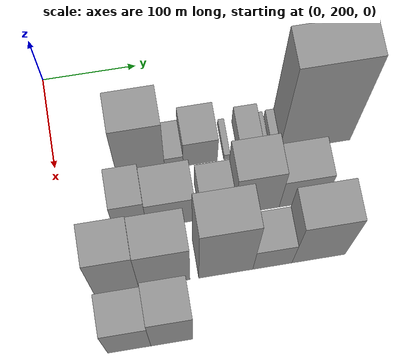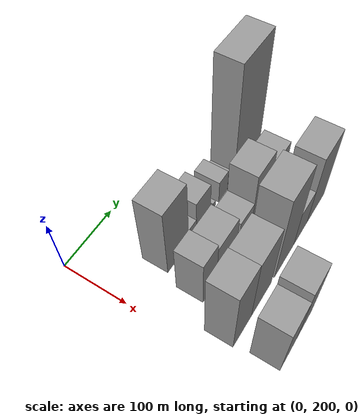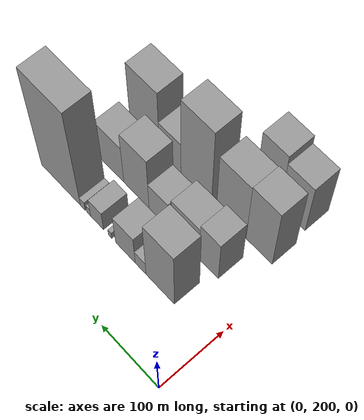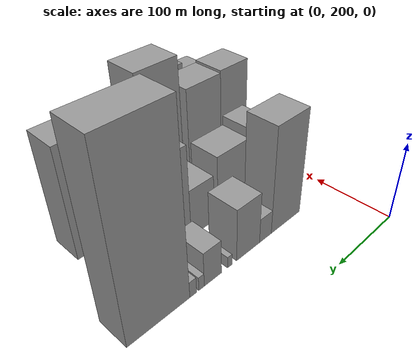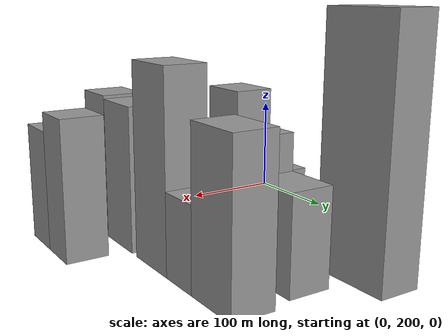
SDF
<sdf version="1.6">
 <world name="default">
  <model name="building_34">
   <static>1</static>
   <pose>100.0000 288.0815 0 0.000000 0.000000 0.000000</pose>
   <link name="link">
    <pose>0 0 69.00 0 0 0</pose>
    <collision name="collision"><geometry><box><size>40.0000 50.3052 138.0000</size></box></geometry></collision>
    <visual name="visual">
     <cast_shadows>0</cast_shadows>
     <geometry><box><size>40.0000 50.3052 138.0000</size></box></geometry>
     <material>
      <script>
       <uri>model://grey_wall/materials/scripts</uri>
       <uri>model://grey_wall/materials/textures</uri>
       <name>vrc/grey_wall</name>
      </script>
     </material>
    </visual>
   </link>
  </model>
  <model name="building_35">
   <static>1</static>
   <pose>100.0000 323.0292 0 0.000000 0.000000 0.000000</pose>
   <link name="link">
    <pose>0 0 16.50 0 0 0</pose>
    <collision name="collision"><geometry><box><size>40.0000 19.5901 33.0000</size></box></geometry></collision>
    <visual name="visual">
     <cast_shadows>0</cast_shadows>
     <geometry><box><size>40.0000 19.5901 33.0000</size></box></geometry>
     <material>
      <script>
       <uri>model://grey_wall/materials/scripts</uri>
       <uri>model://grey_wall/materials/textures</uri>
       <name>vrc/grey_wall</name>
      </script>
     </material>
    </visual>
   </link>
  </model>
  <model name="building_36">
   <static>1</static>
   <pose>100.0000 350.8618 0 0.000000 0.000000 0.000000</pose>
   <link name="link">
    <pose>0 0 34.50 0 0 0</pose>
    <collision name="collision"><geometry><box><size>40.0000 36.0752 69.0000</size></box></geometry></collision>
    <visual name="visual">
     <cast_shadows>0</cast_shadows>
     <geometry><box><size>40.0000 36.0752 69.0000</size></box></geometry>
     <material>
      <script>
       <uri>model://grey_wall/materials/scripts</uri>
       <uri>model://grey_wall/materials/textures</uri>
       <name>vrc/grey_wall</name>
      </script>
     </material>
    </visual>
   </link>
  </model>
  <model name="building_37">
   <static>1</static>
   <pose>100.0000 379.1354 0 0.000000 0.000000 0.000000</pose>
   <link name="link">
    <pose>0 0 7.50 0 0 0</pose>
    <collision name="collision"><geometry><box><size>40.0000 6.4720 15.0000</size></box></geometry></collision>
    <visual name="visual">
     <cast_shadows>0</cast_shadows>
     <geometry><box><size>40.0000 6.4720 15.0000</size></box></geometry>
     <material>
      <script>
       <uri>model://grey_wall/materials/scripts</uri>
       <uri>model://grey_wall/materials/textures</uri>
       <name>vrc/grey_wall</name>
      </script>
     </material>
    </visual>
   </link>
  </model>
  <model name="building_38">
   <static>1</static>
   <pose>100.0000 403.4569 0 0.000000 0.000000 0.000000</pose>
   <link name="link">
    <pose>0 0 22.50 0 0 0</pose>
    <collision name="collision"><geometry><box><size>40.0000 24.1709 45.0000</size></box></geometry></collision>
    <visual name="visual">
     <cast_shadows>0</cast_shadows>
     <geometry><box><size>40.0000 24.1709 45.0000</size></box></geometry>
     <material>
      <script>
       <uri>model://grey_wall/materials/scripts</uri>
       <uri>model://grey_wall/materials/textures</uri>
       <name>vrc/grey_wall</name>
      </script>
     </material>
    </visual>
   </link>
  </model>
  <model name="building_39">
   <static>1</static>
   <pose>100.0000 419.2504 0 0.000000 0.000000 0.000000</pose>
   <link name="link">
    <pose>0 0 9.00 0 0 0</pose>
    <collision name="collision"><geometry><box><size>40.0000 7.4161 18.0000</size></box></geometry></collision>
    <visual name="visual">
     <cast_shadows>0</cast_shadows>
     <geometry><box><size>40.0000 7.4161 18.0000</size></box></geometry>
     <material>
      <script>
       <uri>model://grey_wall/materials/scripts</uri>
       <uri>model://grey_wall/materials/textures</uri>
       <name>vrc/grey_wall</name>
      </script>
     </material>
    </visual>
   </link>
  </model>
  <model name="building_40">
   <static>1</static>
   <pose>100.0000 430.4653 0 0.000000 0.000000 0.000000</pose>
   <link name="link">
    <pose>0 0 10.50 0 0 0</pose>
    <collision name="collision"><geometry><box><size>40.0000 9.0136 21.0000</size></box></geometry></collision>
    <visual name="visual">
     <cast_shadows>0</cast_shadows>
     <geometry><box><size>40.0000 9.0136 21.0000</size></box></geometry>
     <material>
      <script>
       <uri>model://grey_wall/materials/scripts</uri>
       <uri>model://grey_wall/materials/textures</uri>
       <name>vrc/grey_wall</name>
      </script>
     </material>
    </visual>
   </link>
  </model>
  <model name="building_41">
   <static>1</static>
   <pose>100.0000 472.8589 0 0.000000 0.000000 0.000000</pose>
   <link name="link">
    <pose>0 0 111.00 0 0 0</pose>
    <collision name="collision"><geometry><box><size>40.0000 75.7737 222.0000</size></box></geometry></collision>
    <visual name="visual">
     <cast_shadows>0</cast_shadows>
     <geometry><box><size>40.0000 75.7737 222.0000</size></box></geometry>
     <material>
      <script>
       <uri>model://grey_wall/materials/scripts</uri>
       <uri>model://grey_wall/materials/textures</uri>
       <name>vrc/grey_wall</name>
      </script>
     </material>
    </visual>
   </link>
  </model>
  <model name="building_90">
   <static>1</static>
   <pose>160.0000 268.7198 0 0.000000 0.000000 0.000000</pose>
   <link name="link">
    <pose>0 0 48.00 0 0 0</pose>
    <collision name="collision"><geometry><box><size>40.0000 33.2294 96.0000</size></box></geometry></collision>
    <visual name="visual">
     <cast_shadows>0</cast_shadows>
     <geometry><box><size>40.0000 33.2294 96.0000</size></box></geometry>
     <material>
      <script>
       <uri>model://grey_wall/materials/scripts</uri>
       <uri>model://grey_wall/materials/textures</uri>
       <name>vrc/grey_wall</name>
      </script>
     </material>
    </visual>
   </link>
  </model>
  <model name="building_91">
   <static>1</static>
   <pose>160.0000 310.1979 0 0.000000 0.000000 0.000000</pose>
   <link name="link">
    <pose>0 0 42.00 0 0 0</pose>
    <collision name="collision"><geometry><box><size>40.0000 49.7267 84.0000</size></box></geometry></collision>
    <visual name="visual">
     <cast_shadows>0</cast_shadows>
     <geometry><box><size>40.0000 49.7267 84.0000</size></box></geometry>
     <material>
      <script>
       <uri>model://grey_wall/materials/scripts</uri>
       <uri>model://grey_wall/materials/textures</uri>
       <name>vrc/grey_wall</name>
      </script>
     </material>
    </visual>
   </link>
  </model>
  <model name="building_92">
   <static>1</static>
   <pose>160.0000 358.7361 0 0.000000 0.000000 0.000000</pose>
   <link name="link">
    <pose>0 0 31.50 0 0 0</pose>
    <collision name="collision"><geometry><box><size>40.0000 35.3497 63.0000</size></box></geometry></collision>
    <visual name="visual">
     <cast_shadows>0</cast_shadows>
     <geometry><box><size>40.0000 35.3497 63.0000</size></box></geometry>
     <material>
      <script>
       <uri>model://grey_wall/materials/scripts</uri>
       <uri>model://grey_wall/materials/textures</uri>
       <name>vrc/grey_wall</name>
      </script>
     </material>
    </visual>
   </link>
  </model>
  <model name="building_93">
   <static>1</static>
   <pose>160.0000 399.9373 0 0.000000 0.000000 0.000000</pose>
   <link name="link">
    <pose>0 0 60.00 0 0 0</pose>
    <collision name="collision"><geometry><box><size>40.0000 47.0527 120.0000</size></box></geometry></collision>
    <visual name="visual">
     <cast_shadows>0</cast_shadows>
     <geometry><box><size>40.0000 47.0527 120.0000</size></box></geometry>
     <material>
      <script>
       <uri>model://grey_wall/materials/scripts</uri>
       <uri>model://grey_wall/materials/textures</uri>
       <name>vrc/grey_wall</name>
      </script>
     </material>
    </visual>
   </link>
  </model>
  <model name="building_94">
   <static>1</static>
   <pose>160.0000 448.0725 0 0.000000 0.000000 0.000000</pose>
   <link name="link">
    <pose>0 0 43.50 0 0 0</pose>
    <collision name="collision"><geometry><box><size>40.0000 49.2176 87.0000</size></box></geometry></collision>
    <visual name="visual">
     <cast_shadows>0</cast_shadows>
     <geometry><box><size>40.0000 49.2176 87.0000</size></box></geometry>
     <material>
      <script>
       <uri>model://grey_wall/materials/scripts</uri>
       <uri>model://grey_wall/materials/textures</uri>
       <name>vrc/grey_wall</name>
      </script>
     </material>
    </visual>
   </link>
  </model>
  <model name="building_146">
   <static>1</static>
   <pose>220.0000 245.2112 0 0.000000 0.000000 0.000000</pose>
   <link name="link">
    <pose>0 0 69.00 0 0 0</pose>
    <collision name="collision"><geometry><box><size>40.0000 45.1622 138.0000</size></box></geometry></collision>
    <visual name="visual">
     <cast_shadows>0</cast_shadows>
     <geometry><box><size>40.0000 45.1622 138.0000</size></box></geometry>
     <material>
      <script>
       <uri>model://grey_wall/materials/scripts</uri>
       <uri>model://grey_wall/materials/textures</uri>
       <name>vrc/grey_wall</name>
      </script>
     </material>
    </visual>
   </link>
  </model>
  <model name="building_147">
   <static>1</static>
   <pose>220.0000 294.0206 0 0.000000 0.000000 0.000000</pose>
   <link name="link">
    <pose>0 0 67.50 0 0 0</pose>
    <collision name="collision"><geometry><box><size>40.0000 52.4565 135.0000</size></box></geometry></collision>
    <visual name="visual">
     <cast_shadows>0</cast_shadows>
     <geometry><box><size>40.0000 52.4565 135.0000</size></box></geometry>
     <material>
      <script>
       <uri>model://grey_wall/materials/scripts</uri>
       <uri>model://grey_wall/materials/textures</uri>
       <name>vrc/grey_wall</name>
      </script>
     </material>
    </visual>
   </link>
  </model>
  <model name="building_148">
   <static>1</static>
   <pose>220.0000 357.1074 0 0.000000 0.000000 0.000000</pose>
   <link name="link">
    <pose>0 0 88.50 0 0 0</pose>
    <collision name="collision"><geometry><box><size>40.0000 55.7172 177.0000</size></box></geometry></collision>
    <visual name="visual">
     <cast_shadows>0</cast_shadows>
     <geometry><box><size>40.0000 55.7172 177.0000</size></box></geometry>
     <material>
      <script>
       <uri>model://grey_wall/materials/scripts</uri>
       <uri>model://grey_wall/materials/textures</uri>
       <name>vrc/grey_wall</name>
      </script>
     </material>
    </visual>
   </link>
  </model>
  <model name="building_149">
   <static>1</static>
   <pose>220.0000 405.1855 0 0.000000 0.000000 0.000000</pose>
   <link name="link">
    <pose>0 0 37.50 0 0 0</pose>
    <collision name="collision"><geometry><box><size>40.0000 40.4389 75.0000</size></box></geometry></collision>
    <visual name="visual">
     <cast_shadows>0</cast_shadows>
     <geometry><box><size>40.0000 40.4389 75.0000</size></box></geometry>
     <material>
      <script>
       <uri>model://grey_wall/materials/scripts</uri>
       <uri>model://grey_wall/materials/textures</uri>
       <name>vrc/grey_wall</name>
      </script>
     </material>
    </visual>
   </link>
  </model>
  <model name="building_150">
   <static>1</static>
   <pose>220.0000 453.0860 0 0.000000 0.000000 0.000000</pose>
   <link name="link">
    <pose>0 0 70.50 0 0 0</pose>
    <collision name="collision"><geometry><box><size>40.0000 55.3623 141.0000</size></box></geometry></collision>
    <visual name="visual">
     <cast_shadows>0</cast_shadows>
     <geometry><box><size>40.0000 55.3623 141.0000</size></box></geometry>
     <material>
      <script>
       <uri>model://grey_wall/materials/scripts</uri>
       <uri>model://grey_wall/materials/textures</uri>
       <name>vrc/grey_wall</name>
      </script>
     </material>
    </visual>
   </link>
  </model>
  <model name="building_195">
   <static>1</static>
   <pose>280.0000 249.3085 0 0.000000 0.000000 0.000000</pose>
   <link name="link">
    <pose>0 0 55.50 0 0 0</pose>
    <collision name="collision"><geometry><box><size>40.0000 43.5696 111.0000</size></box></geometry></collision>
    <visual name="visual">
     <cast_shadows>0</cast_shadows>
     <geometry><box><size>40.0000 43.5696 111.0000</size></box></geometry>
     <material>
      <script>
       <uri>model://grey_wall/materials/scripts</uri>
       <uri>model://grey_wall/materials/textures</uri>
       <name>vrc/grey_wall</name>
      </script>
     </material>
    </visual>
   </link>
  </model>
  <model name="building_196">
   <static>1</static>
   <pose>280.0000 292.2337 0 0.000000 0.000000 0.000000</pose>
   <link name="link">
    <pose>0 0 64.50 0 0 0</pose>
    <collision name="collision"><geometry><box><size>40.0000 42.2808 129.0000</size></box></geometry></collision>
    <visual name="visual">
     <cast_shadows>0</cast_shadows>
     <geometry><box><size>40.0000 42.2808 129.0000</size></box></geometry>
     <material>
      <script>
       <uri>model://grey_wall/materials/scripts</uri>
       <uri>model://grey_wall/materials/textures</uri>
       <name>vrc/grey_wall</name>
      </script>
     </material>
    </visual>
   </link>
  </model>
 </world>
</sdf>
